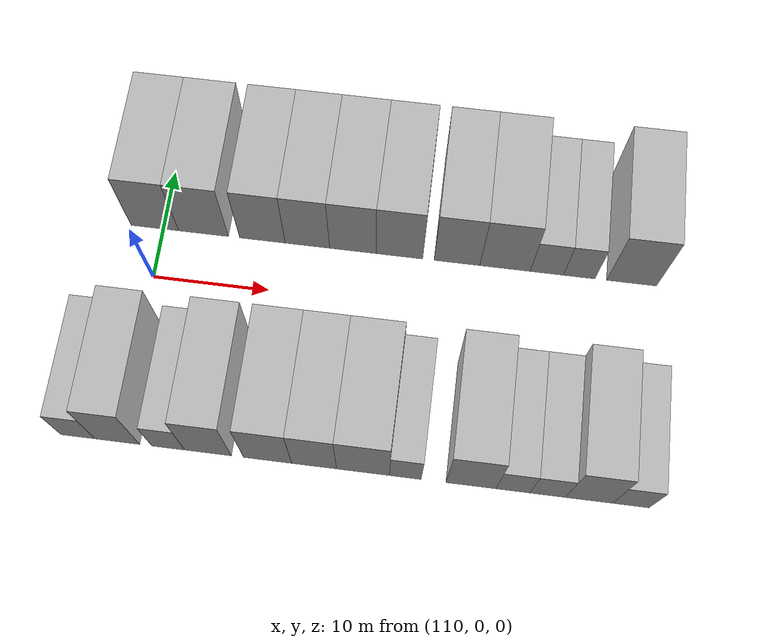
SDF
<sdf version="1.6">
 <world name="default">
  <model name="building_26">
   <static>1</static>
   <pose>109.2234 9.5000 0 0.000000 0.000000 1.570796</pose>
   <link name="link">
    <pose>0 0 4.50 0 0 0</pose>
    <collision name="collision"><geometry><box><size>10.0000 4.2293 9.0000</size></box></geometry></collision>
    <visual name="visual">
     <cast_shadows>0</cast_shadows>
     <geometry><box><size>10.0000 4.2293 9.0000</size></box></geometry>
     <material>
      <script>
       <uri>model://HANNAS_wall/materials/scripts</uri>
       <uri>model://HANNAS_wall/materials/textures</uri>
       <name>vrc/HANNAS_wall</name>
      </script>
     </material>
    </visual>
   </link>
  </model>
  <model name="building_27">
   <static>1</static>
   <pose>113.5331 9.5000 0 0.000000 0.000000 1.570796</pose>
   <link name="link">
    <pose>0 0 4.50 0 0 0</pose>
    <collision name="collision"><geometry><box><size>10.0000 4.3900 9.0000</size></box></geometry></collision>
    <visual name="visual">
     <cast_shadows>0</cast_shadows>
     <geometry><box><size>10.0000 4.3900 9.0000</size></box></geometry>
     <material>
      <script>
       <uri>model://HANNAS_wall/materials/scripts</uri>
       <uri>model://HANNAS_wall/materials/textures</uri>
       <name>vrc/HANNAS_wall</name>
      </script>
     </material>
    </visual>
   </link>
  </model>
  <model name="building_28">
   <static>1</static>
   <pose>118.7385 9.5000 0 0.000000 0.000000 1.570796</pose>
   <link name="link">
    <pose>0 0 4.50 0 0 0</pose>
    <collision name="collision"><geometry><box><size>10.0000 4.0208 9.0000</size></box></geometry></collision>
    <visual name="visual">
     <cast_shadows>0</cast_shadows>
     <geometry><box><size>10.0000 4.0208 9.0000</size></box></geometry>
     <material>
      <script>
       <uri>model://HANNAS_wall/materials/scripts</uri>
       <uri>model://HANNAS_wall/materials/textures</uri>
       <name>vrc/HANNAS_wall</name>
      </script>
     </material>
    </visual>
   </link>
  </model>
  <model name="building_29">
   <static>1</static>
   <pose>122.6874 9.5000 0 0.000000 0.000000 1.570796</pose>
   <link name="link">
    <pose>0 0 4.50 0 0 0</pose>
    <collision name="collision"><geometry><box><size>10.0000 3.8772 9.0000</size></box></geometry></collision>
    <visual name="visual">
     <cast_shadows>0</cast_shadows>
     <geometry><box><size>10.0000 3.8772 9.0000</size></box></geometry>
     <material>
      <script>
       <uri>model://HANNAS_wall/materials/scripts</uri>
       <uri>model://HANNAS_wall/materials/textures</uri>
       <name>vrc/HANNAS_wall</name>
      </script>
     </material>
    </visual>
   </link>
  </model>
  <model name="building_30">
   <static>1</static>
   <pose>126.6650 9.5000 0 0.000000 0.000000 1.570796</pose>
   <link name="link">
    <pose>0 0 4.50 0 0 0</pose>
    <collision name="collision"><geometry><box><size>10.0000 4.0779 9.0000</size></box></geometry></collision>
    <visual name="visual">
     <cast_shadows>0</cast_shadows>
     <geometry><box><size>10.0000 4.0779 9.0000</size></box></geometry>
     <material>
      <script>
       <uri>model://HANNAS_wall/materials/scripts</uri>
       <uri>model://HANNAS_wall/materials/textures</uri>
       <name>vrc/HANNAS_wall</name>
      </script>
     </material>
    </visual>
   </link>
  </model>
  <model name="building_31">
   <static>1</static>
   <pose>130.7236 9.5000 0 0.000000 0.000000 1.570796</pose>
   <link name="link">
    <pose>0 0 4.50 0 0 0</pose>
    <collision name="collision"><geometry><box><size>10.0000 4.0392 9.0000</size></box></geometry></collision>
    <visual name="visual">
     <cast_shadows>0</cast_shadows>
     <geometry><box><size>10.0000 4.0392 9.0000</size></box></geometry>
     <material>
      <script>
       <uri>model://HANNAS_wall/materials/scripts</uri>
       <uri>model://HANNAS_wall/materials/textures</uri>
       <name>vrc/HANNAS_wall</name>
      </script>
     </material>
    </visual>
   </link>
  </model>
  <model name="building_32">
   <static>1</static>
   <pose>135.7183 9.5000 0 0.000000 0.000000 1.570796</pose>
   <link name="link">
    <pose>0 0 4.50 0 0 0</pose>
    <collision name="collision"><geometry><box><size>10.0000 3.9504 9.0000</size></box></geometry></collision>
    <visual name="visual">
     <cast_shadows>0</cast_shadows>
     <geometry><box><size>10.0000 3.9504 9.0000</size></box></geometry>
     <material>
      <script>
       <uri>model://HANNAS_wall/materials/scripts</uri>
       <uri>model://HANNAS_wall/materials/textures</uri>
       <name>vrc/HANNAS_wall</name>
      </script>
     </material>
    </visual>
   </link>
  </model>
  <model name="building_33">
   <static>1</static>
   <pose>139.8712 9.5000 0 0.000000 0.000000 1.570796</pose>
   <link name="link">
    <pose>0 0 4.50 0 0 0</pose>
    <collision name="collision"><geometry><box><size>10.0000 4.3553 9.0000</size></box></geometry></collision>
    <visual name="visual">
     <cast_shadows>0</cast_shadows>
     <geometry><box><size>10.0000 4.3553 9.0000</size></box></geometry>
     <material>
      <script>
       <uri>model://HANNAS_wall/materials/scripts</uri>
       <uri>model://HANNAS_wall/materials/textures</uri>
       <name>vrc/HANNAS_wall</name>
      </script>
     </material>
    </visual>
   </link>
  </model>
  <model name="building_34">
   <static>1</static>
   <pose>143.4770 9.5000 0 0.000000 0.000000 1.570796</pose>
   <link name="link">
    <pose>0 0 3.00 0 0 0</pose>
    <collision name="collision"><geometry><box><size>10.0000 2.8562 6.0000</size></box></geometry></collision>
    <visual name="visual">
     <cast_shadows>0</cast_shadows>
     <geometry><box><size>10.0000 2.8562 6.0000</size></box></geometry>
     <material>
      <script>
       <uri>model://HANNAS_wall/materials/scripts</uri>
       <uri>model://HANNAS_wall/materials/textures</uri>
       <name>vrc/HANNAS_wall</name>
      </script>
     </material>
    </visual>
   </link>
  </model>
  <model name="building_35">
   <static>1</static>
   <pose>146.2581 9.5000 0 0.000000 0.000000 1.570796</pose>
   <link name="link">
    <pose>0 0 3.00 0 0 0</pose>
    <collision name="collision"><geometry><box><size>10.0000 2.7060 6.0000</size></box></geometry></collision>
    <visual name="visual">
     <cast_shadows>0</cast_shadows>
     <geometry><box><size>10.0000 2.7060 6.0000</size></box></geometry>
     <material>
      <script>
       <uri>model://HANNAS_wall/materials/scripts</uri>
       <uri>model://HANNAS_wall/materials/textures</uri>
       <name>vrc/HANNAS_wall</name>
      </script>
     </material>
    </visual>
   </link>
  </model>
  <model name="building_36">
   <static>1</static>
   <pose>150.7458 9.5000 0 0.000000 0.000000 1.570796</pose>
   <link name="link">
    <pose>0 0 4.50 0 0 0</pose>
    <collision name="collision"><geometry><box><size>10.0000 4.2693 9.0000</size></box></geometry></collision>
    <visual name="visual">
     <cast_shadows>0</cast_shadows>
     <geometry><box><size>10.0000 4.2693 9.0000</size></box></geometry>
     <material>
      <script>
       <uri>model://HANNAS_wall/materials/scripts</uri>
       <uri>model://HANNAS_wall/materials/textures</uri>
       <name>vrc/HANNAS_wall</name>
      </script>
     </material>
    </visual>
   </link>
  </model>
  <model name="building_72">
   <static>1</static>
   <pose>106.6339 -9.5000 0 0.000000 0.000000 1.570796</pose>
   <link name="link">
    <pose>0 0 3.00 0 0 0</pose>
    <collision name="collision"><geometry><box><size>10.0000 2.8440 6.0000</size></box></geometry></collision>
    <visual name="visual">
     <cast_shadows>0</cast_shadows>
     <geometry><box><size>10.0000 2.8440 6.0000</size></box></geometry>
     <material>
      <script>
       <uri>model://HANNAS_wall/materials/scripts</uri>
       <uri>model://HANNAS_wall/materials/textures</uri>
       <name>vrc/HANNAS_wall</name>
      </script>
     </material>
    </visual>
   </link>
  </model>
  <model name="building_73">
   <static>1</static>
   <pose>109.8941 -9.5000 0 0.000000 0.000000 1.570796</pose>
   <link name="link">
    <pose>0 0 4.50 0 0 0</pose>
    <collision name="collision"><geometry><box><size>10.0000 3.6765 9.0000</size></box></geometry></collision>
    <visual name="visual">
     <cast_shadows>0</cast_shadows>
     <geometry><box><size>10.0000 3.6765 9.0000</size></box></geometry>
     <material>
      <script>
       <uri>model://HANNAS_wall/materials/scripts</uri>
       <uri>model://HANNAS_wall/materials/textures</uri>
       <name>vrc/HANNAS_wall</name>
      </script>
     </material>
    </visual>
   </link>
  </model>
  <model name="building_74">
   <static>1</static>
   <pose>114.0905 -9.5000 0 0.000000 0.000000 1.570796</pose>
   <link name="link">
    <pose>0 0 3.00 0 0 0</pose>
    <collision name="collision"><geometry><box><size>10.0000 2.7162 6.0000</size></box></geometry></collision>
    <visual name="visual">
     <cast_shadows>0</cast_shadows>
     <geometry><box><size>10.0000 2.7162 6.0000</size></box></geometry>
     <material>
      <script>
       <uri>model://HANNAS_wall/materials/scripts</uri>
       <uri>model://HANNAS_wall/materials/textures</uri>
       <name>vrc/HANNAS_wall</name>
      </script>
     </material>
    </visual>
   </link>
  </model>
  <model name="building_75">
   <static>1</static>
   <pose>117.3584 -9.5000 0 0.000000 0.000000 1.570796</pose>
   <link name="link">
    <pose>0 0 4.50 0 0 0</pose>
    <collision name="collision"><geometry><box><size>10.0000 3.8197 9.0000</size></box></geometry></collision>
    <visual name="visual">
     <cast_shadows>0</cast_shadows>
     <geometry><box><size>10.0000 3.8197 9.0000</size></box></geometry>
     <material>
      <script>
       <uri>model://HANNAS_wall/materials/scripts</uri>
       <uri>model://HANNAS_wall/materials/textures</uri>
       <name>vrc/HANNAS_wall</name>
      </script>
     </material>
    </visual>
   </link>
  </model>
  <model name="building_76">
   <static>1</static>
   <pose>122.2385 -9.5000 0 0.000000 0.000000 1.570796</pose>
   <link name="link">
    <pose>0 0 4.50 0 0 0</pose>
    <collision name="collision"><geometry><box><size>10.0000 3.9403 9.0000</size></box></geometry></collision>
    <visual name="visual">
     <cast_shadows>0</cast_shadows>
     <geometry><box><size>10.0000 3.9403 9.0000</size></box></geometry>
     <material>
      <script>
       <uri>model://HANNAS_wall/materials/scripts</uri>
       <uri>model://HANNAS_wall/materials/textures</uri>
       <name>vrc/HANNAS_wall</name>
      </script>
     </material>
    </visual>
   </link>
  </model>
  <model name="building_77">
   <static>1</static>
   <pose>126.0311 -9.5000 0 0.000000 0.000000 1.570796</pose>
   <link name="link">
    <pose>0 0 4.50 0 0 0</pose>
    <collision name="collision"><geometry><box><size>10.0000 3.6449 9.0000</size></box></geometry></collision>
    <visual name="visual">
     <cast_shadows>0</cast_shadows>
     <geometry><box><size>10.0000 3.6449 9.0000</size></box></geometry>
     <material>
      <script>
       <uri>model://HANNAS_wall/materials/scripts</uri>
       <uri>model://HANNAS_wall/materials/textures</uri>
       <name>vrc/HANNAS_wall</name>
      </script>
     </material>
    </visual>
   </link>
  </model>
  <model name="building_78">
   <static>1</static>
   <pose>129.9895 -9.5000 0 0.000000 0.000000 1.570796</pose>
   <link name="link">
    <pose>0 0 4.50 0 0 0</pose>
    <collision name="collision"><geometry><box><size>10.0000 4.2720 9.0000</size></box></geometry></collision>
    <visual name="visual">
     <cast_shadows>0</cast_shadows>
     <geometry><box><size>10.0000 4.2720 9.0000</size></box></geometry>
     <material>
      <script>
       <uri>model://HANNAS_wall/materials/scripts</uri>
       <uri>model://HANNAS_wall/materials/textures</uri>
       <name>vrc/HANNAS_wall</name>
      </script>
     </material>
    </visual>
   </link>
  </model>
  <model name="building_79">
   <static>1</static>
   <pose>133.4036 -9.5000 0 0.000000 0.000000 1.570796</pose>
   <link name="link">
    <pose>0 0 3.00 0 0 0</pose>
    <collision name="collision"><geometry><box><size>10.0000 2.5561 6.0000</size></box></geometry></collision>
    <visual name="visual">
     <cast_shadows>0</cast_shadows>
     <geometry><box><size>10.0000 2.5561 6.0000</size></box></geometry>
     <material>
      <script>
       <uri>model://HANNAS_wall/materials/scripts</uri>
       <uri>model://HANNAS_wall/materials/textures</uri>
       <name>vrc/HANNAS_wall</name>
      </script>
     </material>
    </visual>
   </link>
  </model>
  <model name="building_80">
   <static>1</static>
   <pose>138.6891 -9.5000 0 0.000000 0.000000 1.570796</pose>
   <link name="link">
    <pose>0 0 4.50 0 0 0</pose>
    <collision name="collision"><geometry><box><size>10.0000 4.0150 9.0000</size></box></geometry></collision>
    <visual name="visual">
     <cast_shadows>0</cast_shadows>
     <geometry><box><size>10.0000 4.0150 9.0000</size></box></geometry>
     <material>
      <script>
       <uri>model://HANNAS_wall/materials/scripts</uri>
       <uri>model://HANNAS_wall/materials/textures</uri>
       <name>vrc/HANNAS_wall</name>
      </script>
     </material>
    </visual>
   </link>
  </model>
  <model name="building_81">
   <static>1</static>
   <pose>142.0562 -9.5000 0 0.000000 0.000000 1.570796</pose>
   <link name="link">
    <pose>0 0 3.00 0 0 0</pose>
    <collision name="collision"><geometry><box><size>10.0000 2.7190 6.0000</size></box></geometry></collision>
    <visual name="visual">
     <cast_shadows>0</cast_shadows>
     <geometry><box><size>10.0000 2.7190 6.0000</size></box></geometry>
     <material>
      <script>
       <uri>model://HANNAS_wall/materials/scripts</uri>
       <uri>model://HANNAS_wall/materials/textures</uri>
       <name>vrc/HANNAS_wall</name>
      </script>
     </material>
    </visual>
   </link>
  </model>
  <model name="building_82">
   <static>1</static>
   <pose>144.8337 -9.5000 0 0.000000 0.000000 1.570796</pose>
   <link name="link">
    <pose>0 0 3.00 0 0 0</pose>
    <collision name="collision"><geometry><box><size>10.0000 2.8360 6.0000</size></box></geometry></collision>
    <visual name="visual">
     <cast_shadows>0</cast_shadows>
     <geometry><box><size>10.0000 2.8360 6.0000</size></box></geometry>
     <material>
      <script>
       <uri>model://HANNAS_wall/materials/scripts</uri>
       <uri>model://HANNAS_wall/materials/textures</uri>
       <name>vrc/HANNAS_wall</name>
      </script>
     </material>
    </visual>
   </link>
  </model>
  <model name="building_83">
   <static>1</static>
   <pose>148.1437 -9.5000 0 0.000000 0.000000 1.570796</pose>
   <link name="link">
    <pose>0 0 4.50 0 0 0</pose>
    <collision name="collision"><geometry><box><size>10.0000 3.7840 9.0000</size></box></geometry></collision>
    <visual name="visual">
     <cast_shadows>0</cast_shadows>
     <geometry><box><size>10.0000 3.7840 9.0000</size></box></geometry>
     <material>
      <script>
       <uri>model://HANNAS_wall/materials/scripts</uri>
       <uri>model://HANNAS_wall/materials/textures</uri>
       <name>vrc/HANNAS_wall</name>
      </script>
     </material>
    </visual>
   </link>
  </model>
  <model name="building_84">
   <static>1</static>
   <pose>151.4761 -9.5000 0 0.000000 0.000000 1.570796</pose>
   <link name="link">
    <pose>0 0 3.00 0 0 0</pose>
    <collision name="collision"><geometry><box><size>10.0000 2.8807 6.0000</size></box></geometry></collision>
    <visual name="visual">
     <cast_shadows>0</cast_shadows>
     <geometry><box><size>10.0000 2.8807 6.0000</size></box></geometry>
     <material>
      <script>
       <uri>model://HANNAS_wall/materials/scripts</uri>
       <uri>model://HANNAS_wall/materials/textures</uri>
       <name>vrc/HANNAS_wall</name>
      </script>
     </material>
    </visual>
   </link>
  </model>
 </world>
</sdf>
